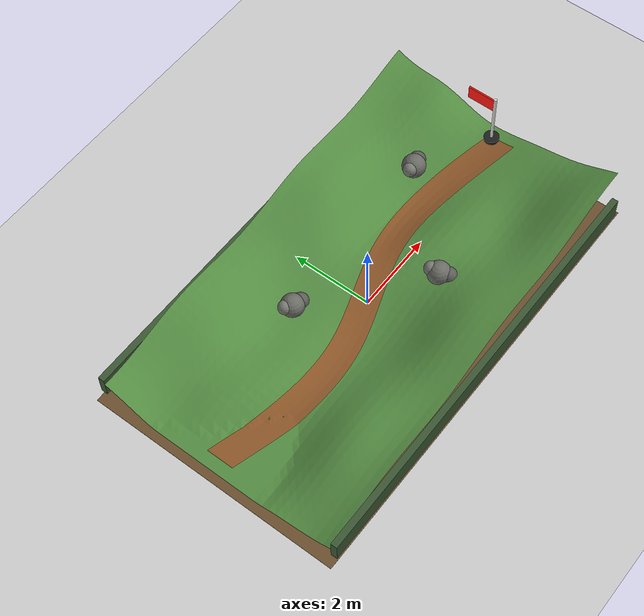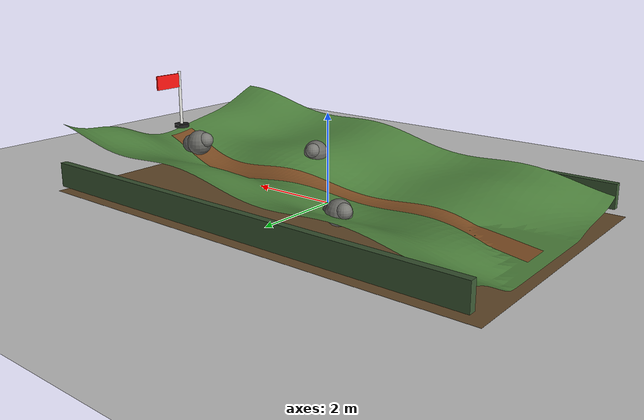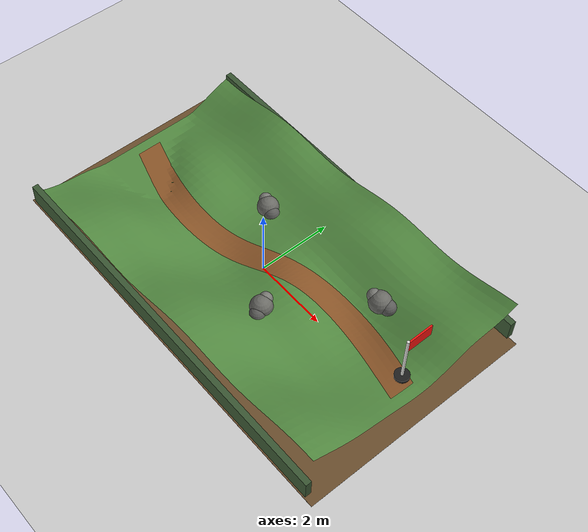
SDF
<?xml version="1.0" ?>
<sdf version="1.6">
  <world name="mountain_scene">
    <!-- 物理参数保持保守，降低小车在斜坡接触时抖动或弹飞的概率。 -->
    <physics name="default_physics" type="ode">
      <max_step_size>0.001</max_step_size>
      <real_time_factor>1.0</real_time_factor>
      <real_time_update_rate>1000</real_time_update_rate>
      <ode>
        <solver>
          <type>quick</type>
          <iters>80</iters>
          <sor>1.0</sor>
        </solver>
        <constraints>
          <cfm>0.0</cfm>
          <erp>0.2</erp>
          <contact_max_correcting_vel>1.0</contact_max_correcting_vel>
          <contact_surface_layer>0.001</contact_surface_layer>
        </constraints>
      </ode>
    </physics>

    <scene>
      <ambient>0.45 0.45 0.45 1</ambient>
      <background>0.70 0.82 0.95 1</background>
      <shadows>true</shadows>
    </scene>

    <!-- Gazebo 自带太阳光，保证山坡和车体有明显阴影。 -->
    <include>
      <uri>model://sun</uri>
    </include>

    <!-- 保留大平面作为外围地面，山体模型叠放在其上方。 -->
    <include>
      <uri>model://ground_plane</uri>
    </include>

    <!-- 山地主体：程序化 mesh 地形，包含起伏山体和蛇形土路。 -->
    <include>
      <uri>model://mountain_terrain</uri>
      <pose>0 0 0 0 0 0</pose>
    </include>

    <!-- 多个岩石障碍物沿山路布置，便于展示避障/绕行效果。 -->
    <include>
      <name>rock_obstacle_left</name>
      <uri>model://rock_obstacle</uri>
      <pose>-1.2 1.15 0.18 0 0 0.35</pose>
    </include>

    <include>
      <name>rock_obstacle_right</name>
      <uri>model://rock_obstacle</uri>
      <pose>1.2 -1.05 0.58 0 0 -0.55</pose>
    </include>

    <include>
      <name>rock_obstacle_top</name>
      <uri>model://rock_obstacle</uri>
      <pose>3.0 0.95 0.92 0 0 0.85</pose>
    </include>

    <!-- 终点检查点，作为实验截图中的目标标志物。 -->
    <include>
      <uri>model://checkpoint_flag</uri>
      <pose>4.7 0.0 1.05 0 0 0</pose>
    </include>

    <!-- 默认相机视角：启动后可以直接看到山路、小车入口和终点旗帜。 -->
    <gui fullscreen="0">
      <camera name="user_camera">
        <pose>-5.5 -6.0 4.2 0 0.58 0.76</pose>
        <view_controller>orbit</view_controller>
      </camera>
    </gui>
  </world>
</sdf>

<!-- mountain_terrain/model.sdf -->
<sdf version="1.6">
  <model name="mountain_terrain">
    <static>true</static>

    <!--
      山地主体使用程序化网格 mesh，而不是少量 box。
      mesh 中包含主坡度、两侧山脊、中央蛇形车道和小幅起伏，展示效果更接近山地。
    -->
    <link name="terrain_mesh">
      <pose>0 0 0 0 0 0</pose>
      <collision name="collision">
        <geometry>
          <mesh>
            <uri>model://mountain_terrain/meshes/mountain_terrain.dae</uri>
          </mesh>
        </geometry>
        <surface>
          <friction>
            <ode>
              <mu>2.0</mu>
              <mu2>2.0</mu2>
            </ode>
          </friction>
          <contact>
            <ode>
              <kp>100000</kp>
              <kd>1.0</kd>
            </ode>
          </contact>
        </surface>
      </collision>
      <visual name="visual">
        <geometry>
          <mesh>
            <uri>model://mountain_terrain/meshes/mountain_terrain.dae</uri>
          </mesh>
        </geometry>
        <material>
          <ambient>0.23 0.38 0.20 1</ambient>
          <diffuse>0.33 0.55 0.26 1</diffuse>
          <specular>0.04 0.04 0.03 1</specular>
        </material>
      </visual>
    </link>

    <!-- 贴合 mesh 高度的蛇形土路，只作为视觉层，帮助展示山地路线。 -->
    <link name="trail_visual">
      <pose>0 0 0 0 0 0</pose>
      <visual name="visual">
        <geometry>
          <mesh>
            <uri>model://mountain_terrain/meshes/mountain_trail.dae</uri>
          </mesh>
        </geometry>
        <material>
          <ambient>0.36 0.22 0.10 1</ambient>
          <diffuse>0.55 0.34 0.16 1</diffuse>
        </material>
      </visual>
    </link>

    <!-- 山地外圈土色底座，帮助从 Gazebo 网格背景中区分实验场地范围。 -->
    <link name="terrain_base">
      <pose>0 0 -0.035 0 0 0</pose>
      <collision name="collision">
        <geometry>
          <box>
            <size>10.8 6.3 0.05</size>
          </box>
        </geometry>
      </collision>
      <visual name="visual">
        <geometry>
          <box>
            <size>10.8 6.3 0.05</size>
          </box>
        </geometry>
        <material>
          <ambient>0.28 0.20 0.12 1</ambient>
          <diffuse>0.42 0.31 0.18 1</diffuse>
        </material>
      </visual>
    </link>

    <!-- 两侧低矮护栏用于强调山路边界，也避免小车演示时跑出场景。 -->
    <link name="left_boundary">
      <pose>0 3.08 0.42 0 0 0</pose>
      <collision name="collision">
        <geometry>
          <box>
            <size>10.4 0.16 0.55</size>
          </box>
        </geometry>
      </collision>
      <visual name="visual">
        <geometry>
          <box>
            <size>10.4 0.16 0.55</size>
          </box>
        </geometry>
        <material>
          <ambient>0.18 0.25 0.15 1</ambient>
          <diffuse>0.23 0.34 0.20 1</diffuse>
        </material>
      </visual>
    </link>

    <link name="right_boundary">
      <pose>0 -3.08 0.42 0 0 0</pose>
      <collision name="collision">
        <geometry>
          <box>
            <size>10.4 0.16 0.55</size>
          </box>
        </geometry>
      </collision>
      <visual name="visual">
        <geometry>
          <box>
            <size>10.4 0.16 0.55</size>
          </box>
        </geometry>
        <material>
          <ambient>0.18 0.25 0.15 1</ambient>
          <diffuse>0.23 0.34 0.20 1</diffuse>
        </material>
      </visual>
    </link>
  </model>
</sdf>

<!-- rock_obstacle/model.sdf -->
<sdf version="1.6">
  <model name="rock_obstacle">
    <static>true</static>

    <!-- 由多个球体拼成不规则岩石，避免依赖外部 mesh。 -->
    <link name="rock_cluster">
      <collision name="main_collision">
        <pose>0 0 0.16 0 0 0</pose>
        <geometry>
          <sphere>
            <radius>0.28</radius>
          </sphere>
        </geometry>
      </collision>
      <visual name="main_visual">
        <pose>0 0 0.16 0 0 0</pose>
        <geometry>
          <sphere>
            <radius>0.28</radius>
          </sphere>
        </geometry>
        <material>
          <ambient>0.26 0.26 0.25 1</ambient>
          <diffuse>0.42 0.42 0.40 1</diffuse>
        </material>
      </visual>

      <collision name="side_collision">
        <pose>0.18 -0.12 0.12 0 0 0</pose>
        <geometry>
          <sphere>
            <radius>0.20</radius>
          </sphere>
        </geometry>
      </collision>
      <visual name="side_visual">
        <pose>0.18 -0.12 0.12 0 0 0</pose>
        <geometry>
          <sphere>
            <radius>0.20</radius>
          </sphere>
        </geometry>
        <material>
          <ambient>0.22 0.22 0.22 1</ambient>
          <diffuse>0.36 0.36 0.35 1</diffuse>
        </material>
      </visual>

      <collision name="cap_collision">
        <pose>-0.14 0.12 0.24 0 0 0</pose>
        <geometry>
          <sphere>
            <radius>0.17</radius>
          </sphere>
        </geometry>
      </collision>
      <visual name="cap_visual">
        <pose>-0.14 0.12 0.24 0 0 0</pose>
        <geometry>
          <sphere>
            <radius>0.17</radius>
          </sphere>
        </geometry>
        <material>
          <ambient>0.30 0.30 0.29 1</ambient>
          <diffuse>0.48 0.48 0.46 1</diffuse>
        </material>
      </visual>
    </link>
  </model>
</sdf>

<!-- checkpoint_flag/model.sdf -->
<sdf version="1.6">
  <model name="checkpoint_flag">
    <static>true</static>

    <link name="flag_link">
      <!-- 旗杆底座，提高视觉稳定感。 -->
      <collision name="base_collision">
        <pose>0 0 0.04 0 0 0</pose>
        <geometry>
          <cylinder>
            <radius>0.18</radius>
            <length>0.08</length>
          </cylinder>
        </geometry>
      </collision>
      <visual name="base_visual">
        <pose>0 0 0.04 0 0 0</pose>
        <geometry>
          <cylinder>
            <radius>0.18</radius>
            <length>0.08</length>
          </cylinder>
        </geometry>
        <material>
          <ambient>0.08 0.08 0.08 1</ambient>
          <diffuse>0.12 0.12 0.12 1</diffuse>
        </material>
      </visual>

      <collision name="pole_collision">
        <pose>0 0 0.72 0 0 0</pose>
        <geometry>
          <cylinder>
            <radius>0.035</radius>
            <length>1.36</length>
          </cylinder>
        </geometry>
      </collision>
      <visual name="pole_visual">
        <pose>0 0 0.72 0 0 0</pose>
        <geometry>
          <cylinder>
            <radius>0.035</radius>
            <length>1.36</length>
          </cylinder>
        </geometry>
        <material>
          <ambient>0.78 0.78 0.78 1</ambient>
          <diffuse>0.90 0.90 0.88 1</diffuse>
        </material>
      </visual>

      <!-- 红色旗面用于标识终点检查点。 -->
      <collision name="flag_collision">
        <pose>0 0.35 1.18 0 0 0</pose>
        <geometry>
          <box>
            <size>0.04 0.70 0.34</size>
          </box>
        </geometry>
      </collision>
      <visual name="flag_visual">
        <pose>0 0.35 1.18 0 0 0</pose>
        <geometry>
          <box>
            <size>0.04 0.70 0.34</size>
          </box>
        </geometry>
        <material>
          <ambient>0.85 0.06 0.05 1</ambient>
          <diffuse>1.00 0.08 0.06 1</diffuse>
        </material>
      </visual>
    </link>
  </model>
</sdf>
